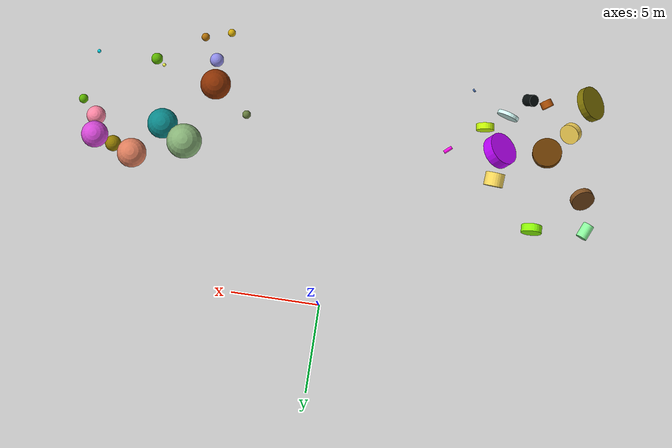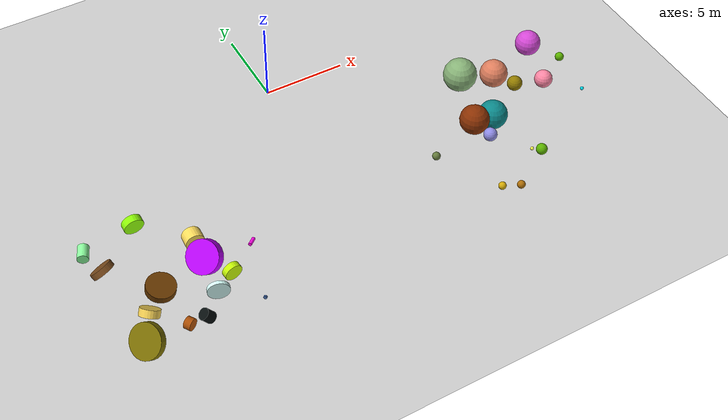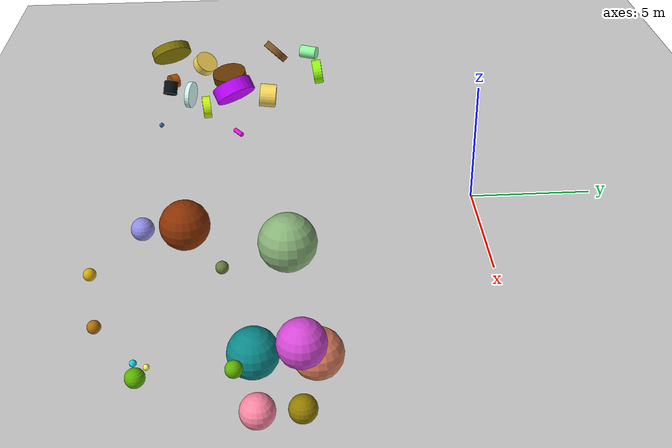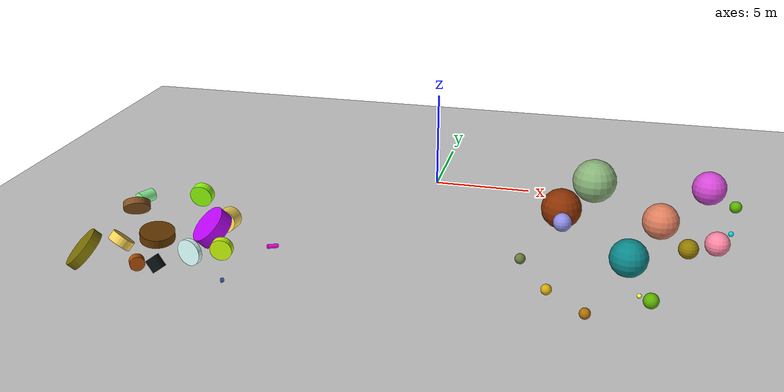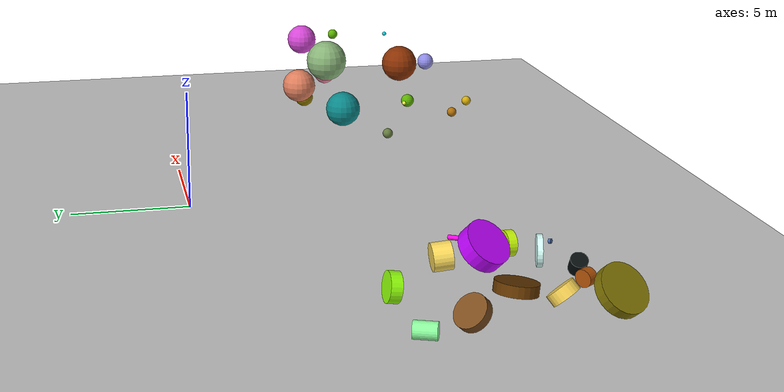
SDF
<sdf version="1.6">
 <world name="default">
  <model name="cylinder_12">
   <allow_auto_disable>0</allow_auto_disable>
   <link name="link">
    <collision name="collision">
     <geometry><cylinder><length>0.348519469831</length><radius>0.671846686259</radius></cylinder></geometry>
     <max_contacts>20</max_contacts>
    </collision>
    <visual name="visual">
     <geometry><cylinder><length>0.348519469831</length><radius>0.671846686259</radius></cylinder></geometry>
     <material>
      <diffuse>0.498039 0.305882 0.117647 1</diffuse>
      <ambient>0.498039 0.305882 0.117647 1</ambient>
     </material>
     <transparency>0.0</transparency>
    </visual>
    <inertial>
     <mass>0.97199405826</mass>
     <inertia>
      <ixz>0.0</ixz>
      <ixx>0.119522847524</ixx>
      <ixy>0.0</ixy>
      <izz>0.219368352356</izz>
      <iyy>0.119522847524</iyy>
      <iyz>0.0</iyz>
     </inertia>
    </inertial>
   </link>
   <pose>-13.905 -8.068 0.618198 -2.39894 0.44911 3.14159</pose>
   <static>0</static>
  </model>
  <model name="ball_17">
   <allow_auto_disable>0</allow_auto_disable>
   <link name="link">
    <collision name="collision">
     <geometry><sphere><radius>0.451653756116</radius></sphere></geometry>
     <max_contacts>20</max_contacts>
    </collision>
    <visual name="visual">
     <geometry><sphere><radius>0.451653756116</radius></sphere></geometry>
     <material><diffuse>0.576471 0.486275 0 1</diffuse><ambient>0.576471 0.486275 0 1</ambient></material>
     <transparency>0.0</transparency>
    </visual>
    <inertial>
     <mass>0.638181472265</mass>
     <inertia>
      <ixz>0.0</ixz>
      <ixx>0.0520733401456</ixx>
      <ixy>0.0</ixy>
      <izz>0.0520733401456</izz>
      <iyy>0.0520733401456</iyy>
      <iyz>0.0</iyz>
     </inertia>
    </inertial>
   </link>
   <pose>12.8337 -7.33886 1 0 -0 0</pose>
   <static>0</static>
  </model>
  <model name="cylinder_15">
   <allow_auto_disable>0</allow_auto_disable>
   <link name="link">
    <collision name="collision">
     <geometry><cylinder><length>0.423007717558</length><radius>0.986067762605</radius></cylinder></geometry>
     <max_contacts>20</max_contacts>
    </collision>
    <visual name="visual">
     <geometry><cylinder><length>0.423007717558</length><radius>0.986067762605</radius></cylinder></geometry>
     <material>
      <diffuse>0.490196 0.443137 0.0117647 1</diffuse>
      <ambient>0.490196 0.443137 0.0117647 1</ambient>
     </material>
     <transparency>0.0</transparency>
    </visual>
    <inertial>
     <mass>0.439629350429</mass>
     <inertia>
      <ixz>0.0</ixz>
      <ixx>0.113421603715</ixx>
      <ixy>0.0</ixy>
      <izz>0.213732322358</izz>
      <iyy>0.113421603715</iyy>
      <iyz>0.0</iyz>
     </inertia>
    </inertial>
   </link>
   <pose>-13.6457 -13.5029 0.854991 -0.292695 0.759019 -3.14159</pose>
   <static>0</static>
  </model>
  <model name="cylinder_14">
   <allow_auto_disable>0</allow_auto_disable>
   <link name="link">
    <collision name="collision">
     <geometry><cylinder><length>0.436676515614</length><radius>0.585657574323</radius></cylinder></geometry>
     <max_contacts>20</max_contacts>
    </collision>
    <visual name="visual">
     <geometry><cylinder><length>0.436676515614</length><radius>0.585657574323</radius></cylinder></geometry>
     <material>
      <diffuse>0.560784 0.996078 0.0352941 1</diffuse>
      <ambient>0.560784 0.996078 0.0352941 1</ambient>
     </material>
     <transparency>0.0</transparency>
    </visual>
    <inertial>
     <mass>0.1</mass>
     <inertia>
      <ixz>0.0</ixz>
      <ixx>0.0101639230198</ixx>
      <ixy>0.0</ixy>
      <izz>0.0171497397181</izz>
      <iyy>0.0101639230198</iyy>
      <iyz>0.0</iyz>
     </inertia>
    </inertial>
   </link>
   <pose>-11.2878 -5.96321 0.609437 -1.43251 -0.160278 1.4058e-17</pose>
   <static>0</static>
  </model>
  <model name="cylinder_17">
   <allow_auto_disable>0</allow_auto_disable>
   <link name="link">
    <collision name="collision">
     <geometry><cylinder><length>0.10429812806</length><radius>0.1</radius></cylinder></geometry>
     <max_contacts>20</max_contacts>
    </collision>
    <visual name="visual">
     <geometry><cylinder><length>0.10429812806</length><radius>0.1</radius></cylinder></geometry>
     <material>
      <diffuse>0.262745 0.419608 0.678431 1</diffuse>
      <ambient>0.262745 0.419608 0.678431 1</ambient>
     </material>
     <transparency>0.0</transparency>
    </visual>
    <inertial>
     <mass>0.14351779254</mass>
     <inertia>
      <ixz>0.0</ixz>
      <ixx>0.000488894550491</ixx>
      <ixy>0.0</ixy>
      <izz>0.0007175889627</izz>
      <iyy>0.000488894550491</iyy>
      <iyz>0.0</iyz>
     </inertia>
    </inertial>
   </link>
   <pose>-7.03344 -13.4673 0.107622 -0.756639 1.32545 3.14159</pose>
   <static>0</static>
  </model>
  <model name="cylinder_16">
   <allow_auto_disable>0</allow_auto_disable>
   <link name="link">
    <collision name="collision">
     <geometry><cylinder><length>0.404121012867</length><radius>0.343477079178</radius></cylinder></geometry>
     <max_contacts>20</max_contacts>
    </collision>
    <visual name="visual">
     <geometry><cylinder><length>0.404121012867</length><radius>0.343477079178</radius></cylinder></geometry>
     <material>
      <diffuse>0.67451 0.309804 0.0235294 1</diffuse>
      <ambient>0.67451 0.309804 0.0235294 1</ambient>
     </material>
     <transparency>0.0</transparency>
    </visual>
    <inertial>
     <mass>0.257883883408</mass>
     <inertia>
      <ixz>0.0</ixz>
      <ixx>0.0111157260091</ixx>
      <ixy>0.0</ixy>
      <izz>0.015212119491</izz>
      <iyy>0.0111157260091</iyy>
      <iyz>0.0</iyz>
     </inertia>
    </inertial>
   </link>
   <pose>-11.228 -13.2284 0.348383 0.998216 1.52477 -1.20654e-15</pose>
   <static>0</static>
  </model>
  <model name="cylinder_11">
   <allow_auto_disable>0</allow_auto_disable>
   <link name="link">
    <collision name="collision">
     <geometry><cylinder><length>0.860133873566</length><radius>0.325578055796</radius></cylinder></geometry>
     <max_contacts>20</max_contacts>
    </collision>
    <visual name="visual">
     <geometry><cylinder><length>0.860133873566</length><radius>0.325578055796</radius></cylinder></geometry>
     <material><diffuse>0.54902 1 0.619608 1</diffuse><ambient>0.54902 1 0.619608 1</ambient></material>
     <transparency>0.0</transparency>
    </visual>
    <inertial>
     <mass>0.91265873735</mass>
     <inertia>
      <ixz>0.0</ixz>
      <ixx>0.0804534149055</ixx>
      <ixy>0.0</ixy>
      <izz>0.0483714015418</izz>
      <iyy>0.0804534149055</iyy>
      <iyz>0.0</iyz>
     </inertia>
    </inertial>
   </link>
   <pose>-14.3365 -6.31927 0.335149 1.97323 1.51345 -3.14159</pose>
   <static>0</static>
  </model>
  <model name="cylinder_10">
   <allow_auto_disable>0</allow_auto_disable>
   <link name="link">
    <collision name="collision">
     <geometry><cylinder><length>0.440561296334</length><radius>0.574134478534</radius></cylinder></geometry>
     <max_contacts>20</max_contacts>
    </collision>
    <visual name="visual">
     <geometry><cylinder><length>0.440561296334</length><radius>0.574134478534</radius></cylinder></geometry>
     <material>
      <diffuse>0.956863 0.815686 0.329412 1</diffuse>
      <ambient>0.956863 0.815686 0.329412 1</ambient>
     </material>
     <transparency>0.0</transparency>
    </visual>
    <inertial>
     <mass>0.424487018374</mass>
     <inertia>
      <ixz>0.0</ixz>
      <ixx>0.0418468306845</ixx>
      <ixy>0.0</ixy>
      <izz>0.0699619127123</izz>
      <iyy>0.0418468306845</iyy>
      <iyz>0.0</iyz>
     </inertia>
    </inertial>
   </link>
   <pose>-12.7845 -11.7283 0.554997 -2.60194 -0.571612 -3.14159</pose>
   <static>0</static>
  </model>
  <model name="cylinder_8">
   <allow_auto_disable>0</allow_auto_disable>
   <link name="link">
    <collision name="collision">
     <geometry><cylinder><length>0.217918807266</length><radius>0.625748222619</radius></cylinder></geometry>
     <max_contacts>20</max_contacts>
    </collision>
    <visual name="visual">
     <geometry><cylinder><length>0.217918807266</length><radius>0.625748222619</radius></cylinder></geometry>
     <material><diffuse>0.839216 1 0.980392 1</diffuse><ambient>0.839216 1 0.980392 1</ambient></material>
     <transparency>0.0</transparency>
    </visual>
    <inertial>
     <mass>0.1</mass>
     <inertia>
      <ixz>0.0</ixz>
      <ixx>0.0101847593408</ixx>
      <ixy>0.0</ixy>
      <izz>0.0195780419056</izz>
      <iyy>0.0101847593408</iyy>
      <iyz>0.0</iyz>
     </inertia>
    </inertial>
   </link>
   <pose>-9.10137 -12.2121 0.627942 1.28189 -1.47956 0</pose>
   <static>0</static>
  </model>
  <model name="ball_18">
   <allow_auto_disable>0</allow_auto_disable>
   <link name="link">
    <collision name="collision">
     <geometry><sphere><radius>0.249406188415</radius></sphere></geometry>
     <max_contacts>20</max_contacts>
    </collision>
    <visual name="visual">
     <geometry><sphere><radius>0.249406188415</radius></sphere></geometry>
     <material><diffuse>0.360784 0.698039 0 1</diffuse><ambient>0.360784 0.698039 0 1</ambient></material>
     <transparency>0.0</transparency>
    </visual>
    <inertial>
     <mass>0.641865758676</mass>
     <inertia>
      <ixz>0.0</ixz>
      <ixx>0.0159705050341</ixx>
      <ixy>0.0</ixy>
      <izz>0.0159705050341</izz>
      <iyy>0.0159705050341</iyy>
      <iyz>0.0</iyz>
     </inertia>
    </inertial>
   </link>
   <pose>14.266 -9.16051 4 0 -0 0</pose>
   <static>0</static>
  </model>
  <model name="ball_13">
   <allow_auto_disable>0</allow_auto_disable>
   <link name="link">
    <collision name="collision">
     <geometry><sphere><radius>0.86516376843</radius></sphere></geometry>
     <max_contacts>20</max_contacts>
    </collision>
    <visual name="visual">
     <geometry><sphere><radius>0.86516376843</radius></sphere></geometry>
     <material>
      <diffuse>0.0392157 0.533333 0.541176 1</diffuse>
      <ambient>0.0392157 0.533333 0.541176 1</ambient>
     </material>
     <transparency>0.0</transparency>
    </visual>
    <inertial>
     <mass>0.976479386893</mass>
     <inertia>
      <ixz>0.0</ixz>
      <ixx>0.292361188394</ixx>
      <ixy>0.0</ixy>
      <izz>0.292361188394</izz>
      <iyy>0.292361188394</iyy>
      <iyz>0.0</iyz>
     </inertia>
    </inertial>
   </link>
   <pose>10.2424 -8.86535 1 0 -0 0</pose>
   <static>0</static>
  </model>
  <model name="ball_16">
   <allow_auto_disable>0</allow_auto_disable>
   <link name="link">
    <collision name="collision">
     <geometry><sphere><radius>0.835407792476</radius></sphere></geometry>
     <max_contacts>20</max_contacts>
    </collision>
    <visual name="visual">
     <geometry><sphere><radius>0.835407792476</radius></sphere></geometry>
     <material>
      <diffuse>0.545098 0.192157 0.0117647 1</diffuse>
      <ambient>0.545098 0.192157 0.0117647 1</ambient>
     </material>
     <transparency>0.0</transparency>
    </visual>
    <inertial>
     <mass>0.989905664653</mass>
     <inertia>
      <ixz>0.0</ixz>
      <ixx>0.276344512284</ixx>
      <ixy>0.0</ixy>
      <izz>0.276344512284</izz>
      <iyy>0.276344512284</iyy>
      <iyz>0.0</iyz>
     </inertia>
    </inertial>
   </link>
   <pose>7.24833 -10.9844 4 0 -0 0</pose>
   <static>0</static>
  </model>
  <model name="cylinder_4">
   <allow_auto_disable>0</allow_auto_disable>
   <link name="link">
    <collision name="collision">
     <geometry><cylinder><length>0.63597103052</length><radius>0.336725903655</radius></cylinder></geometry>
     <max_contacts>20</max_contacts>
    </collision>
    <visual name="visual">
     <geometry><cylinder><length>0.63597103052</length><radius>0.336725903655</radius></cylinder></geometry>
     <material>
      <diffuse>0.027451 0.0509804 0.0509804 1</diffuse>
      <ambient>0.027451 0.0509804 0.0509804 1</ambient>
     </material>
     <transparency>0.0</transparency>
    </visual>
    <inertial>
     <mass>0.647725342089</mass>
     <inertia>
      <ixz>0.0</ixz>
      <ixx>0.0401920135272</ixx>
      <ixy>0.0</ixy>
      <izz>0.0367209533261</izz>
      <iyy>0.0401920135272</iyy>
      <iyz>0.0</iyz>
     </inertia>
    </inertial>
   </link>
   <pose>-10.2625 -13.3013 0.456832 -3.02343 0.639498 3.14159</pose>
   <static>0</static>
  </model>
  <model name="ball_14">
   <allow_auto_disable>0</allow_auto_disable>
   <link name="link">
    <collision name="collision">
     <geometry><sphere><radius>0.232508738198</radius></sphere></geometry>
     <max_contacts>20</max_contacts>
    </collision>
    <visual name="visual">
     <geometry><sphere><radius>0.232508738198</radius></sphere></geometry>
     <material>
      <diffuse>0.686275 0.435294 0.0352941 1</diffuse>
      <ambient>0.686275 0.435294 0.0352941 1</ambient>
     </material>
     <transparency>0.0</transparency>
    </visual>
    <inertial>
     <mass>0.794587407722</mass>
     <inertia>
      <ixz>0.0</ixz>
      <ixx>0.0171822576945</ixx>
      <ixy>0.0</ixy>
      <izz>0.0171822576945</izz>
      <iyy>0.0171822576945</iyy>
      <iyz>0.0</iyz>
     </inertia>
    </inertial>
   </link>
   <pose>8.58749 -14.1342 1 0 -0 0</pose>
   <static>0</static>
  </model>
  <model name="ball_15">
   <allow_auto_disable>0</allow_auto_disable>
   <link name="link">
    <collision name="collision">
     <geometry><sphere><radius>0.1</radius></sphere></geometry>
     <max_contacts>20</max_contacts>
    </collision>
    <visual name="visual">
     <geometry><sphere><radius>0.1</radius></sphere></geometry>
     <material><diffuse>0.992157 1 0.321569 1</diffuse><ambient>0.992157 1 0.321569 1</ambient></material>
     <transparency>0.0</transparency>
    </visual>
    <inertial>
     <mass>0.82939693921</mass>
     <inertia>
      <ixz>0.0</ixz>
      <ixx>0.00331758775684</ixx>
      <ixy>0.0</ixy>
      <izz>0.00331758775684</izz>
      <iyy>0.00331758775684</iyy>
      <iyz>0.0</iyz>
     </inertia>
    </inertial>
   </link>
   <pose>10.6722 -12.2012 1 0 -0 0</pose>
   <static>0</static>
  </model>
  <model name="ball_12">
   <allow_auto_disable>0</allow_auto_disable>
   <link name="link">
    <collision name="collision">
     <geometry><sphere><radius>0.531971920657</radius></sphere></geometry>
     <max_contacts>20</max_contacts>
    </collision>
    <visual name="visual">
     <geometry><sphere><radius>0.531971920657</radius></sphere></geometry>
     <material>
      <diffuse>0.996078 0.52549 0.643137 1</diffuse>
      <ambient>0.996078 0.52549 0.643137 1</ambient>
     </material>
     <transparency>0.0</transparency>
    </visual>
    <inertial>
     <mass>0.117626761506</mass>
     <inertia>
      <ixz>0.0</ixz>
      <ixx>0.0133150729499</ixx>
      <ixy>0.0</ixy>
      <izz>0.0133150729499</izz>
      <iyy>0.0133150729499</iyy>
      <iyz>0.0</iyz>
     </inertia>
    </inertial>
   </link>
   <pose>13.8407 -8.63617 2 0 -0 0</pose>
   <static>0</static>
  </model>
  <model name="ball_10">
   <allow_auto_disable>0</allow_auto_disable>
   <link name="link">
    <collision name="collision">
     <geometry><sphere><radius>0.379432220365</radius></sphere></geometry>
     <max_contacts>20</max_contacts>
    </collision>
    <visual name="visual">
     <geometry><sphere><radius>0.379432220365</radius></sphere></geometry>
     <material>
      <diffuse>0.560784 0.54902 0.905882 1</diffuse>
      <ambient>0.560784 0.54902 0.905882 1</ambient>
     </material>
     <transparency>0.0</transparency>
    </visual>
    <inertial>
     <mass>0.682365531955</mass>
     <inertia>
      <ixz>0.0</ixz>
      <ixx>0.0392957414077</ixx>
      <ixy>0.0</ixy>
      <izz>0.0392957414077</izz>
      <iyy>0.0392957414077</iyy>
      <iyz>0.0</iyz>
     </inertia>
    </inertial>
   </link>
   <pose>7.38445 -12.3332 4 0 -0 0</pose>
   <static>0</static>
  </model>
  <model name="cylinder_18">
   <allow_auto_disable>0</allow_auto_disable>
   <link name="link">
    <collision name="collision">
     <geometry><cylinder><length>0.437397844818</length><radius>0.835356150945</radius></cylinder></geometry>
     <max_contacts>20</max_contacts>
    </collision>
    <visual name="visual">
     <geometry><cylinder><length>0.437397844818</length><radius>0.835356150945</radius></cylinder></geometry>
     <material><diffuse>0.396078 0.215686 0 1</diffuse><ambient>0.396078 0.215686 0 1</ambient></material>
     <transparency>0.0</transparency>
    </visual>
    <inertial>
     <mass>0.182459761803</mass>
     <inertia>
      <ixz>0.0</ixz>
      <ixx>0.0347399824162</ixx>
      <ixy>0.0</ixy>
      <izz>0.0636620262695</izz>
      <iyy>0.0347399824162</iyy>
      <iyz>0.0</iyz>
     </inertia>
    </inertial>
   </link>
   <pose>-11.6185 -10.4335 0.368288 0.134413 0.127265 0</pose>
   <static>0</static>
  </model>
  <model name="ball_8">
   <allow_auto_disable>0</allow_auto_disable>
   <link name="link">
    <collision name="collision">
     <geometry><sphere><radius>0.238486846299</radius></sphere></geometry>
     <max_contacts>20</max_contacts>
    </collision>
    <visual name="visual">
     <geometry><sphere><radius>0.238486846299</radius></sphere></geometry>
     <material><diffuse>0.4 0.486275 0.243137 1</diffuse><ambient>0.4 0.486275 0.243137 1</ambient></material>
     <transparency>0.0</transparency>
    </visual>
    <inertial>
     <mass>0.1</mass>
     <inertia>
      <ixz>0.0</ixz>
      <ixx>0.0022750390343</ixx>
      <ixy>0.0</ixy>
      <izz>0.0022750390343</izz>
      <iyy>0.0022750390343</iyy>
      <iyz>0.0</iyz>
     </inertia>
    </inertial>
   </link>
   <pose>5.60488 -10.0495 1 0 -0 0</pose>
   <static>0</static>
  </model>
  <model name="ball_9">
   <allow_auto_disable>0</allow_auto_disable>
   <link name="link">
    <collision name="collision">
     <geometry><sphere><radius>0.1</radius></sphere></geometry>
     <max_contacts>20</max_contacts>
    </collision>
    <visual name="visual">
     <geometry><sphere><radius>0.1</radius></sphere></geometry>
     <material>
      <diffuse>0.00784314 0.847059 0.913725 1</diffuse>
      <ambient>0.00784314 0.847059 0.913725 1</ambient>
     </material>
     <transparency>0.0</transparency>
    </visual>
    <inertial>
     <mass>0.480486730799</mass>
     <inertia>
      <ixz>0.0</ixz>
      <ixx>0.0019219469232</ixx>
      <ixy>0.0</ixy>
      <izz>0.0019219469232</izz>
      <iyy>0.0019219469232</iyy>
      <iyz>0.0</iyz>
     </inertia>
    </inertial>
   </link>
   <pose>13.8393 -11.8856 4 0 -0 0</pose>
   <static>0</static>
  </model>
  <model name="cylinder_9">
   <allow_auto_disable>0</allow_auto_disable>
   <link name="link">
    <collision name="collision">
     <geometry><cylinder><length>0.649638154971</length><radius>0.967159558529</radius></cylinder></geometry>
     <max_contacts>20</max_contacts>
    </collision>
    <visual name="visual">
     <geometry><cylinder><length>0.649638154971</length><radius>0.967159558529</radius></cylinder></geometry>
     <material>
      <diffuse>0.745098 0.0117647 0.992157 1</diffuse>
      <ambient>0.745098 0.0117647 0.992157 1</ambient>
     </material>
     <transparency>0.0</transparency>
    </visual>
    <inertial>
     <mass>0.914088808387</mass>
     <inertia>
      <ixz>0.0</ixz>
      <ixx>0.245906843317</ixx>
      <ixy>0.0</ixy>
      <izz>0.427518244103</izz>
      <iyy>0.245906843317</iyy>
      <iyz>0.0</iyz>
     </inertia>
    </inertial>
   </link>
   <pose>-8.89416 -10.1027 0.89658 -0.404197 0.655571 -3.14159</pose>
   <static>0</static>
  </model>
  <model name="cylinder_5">
   <allow_auto_disable>0</allow_auto_disable>
   <link name="link">
    <collision name="collision">
     <geometry><cylinder><length>0.765085205494</length><radius>0.555521799547</radius></cylinder></geometry>
     <max_contacts>20</max_contacts>
    </collision>
    <visual name="visual">
     <geometry><cylinder><length>0.765085205494</length><radius>0.555521799547</radius></cylinder></geometry>
     <material>
      <diffuse>0.992157 0.862745 0.360784 1</diffuse>
      <ambient>0.992157 0.862745 0.360784 1</ambient>
     </material>
     <transparency>0.0</transparency>
    </visual>
    <inertial>
     <mass>0.396177619179</mass>
     <inertia>
      <ixz>0.0</ixz>
      <ixx>0.0498909374855</ixx>
      <ixy>0.0</ixy>
      <izz>0.061131092051</izz>
      <iyy>0.0498909374855</iyy>
      <iyz>0.0</iyz>
     </inertia>
    </inertial>
   </link>
   <pose>-8.82327 -8.46924 0.590388 -1.45266 0.574773 3.14159</pose>
   <static>0</static>
  </model>
  <model name="ball_4">
   <allow_auto_disable>0</allow_auto_disable>
   <link name="link">
    <collision name="collision">
     <geometry><sphere><radius>0.825508677049</radius></sphere></geometry>
     <max_contacts>20</max_contacts>
    </collision>
    <visual name="visual">
     <geometry><sphere><radius>0.825508677049</radius></sphere></geometry>
     <material>
      <diffuse>0.870588 0.494118 0.364706 1</diffuse>
      <ambient>0.870588 0.494118 0.364706 1</ambient>
     </material>
     <transparency>0.0</transparency>
    </visual>
    <inertial>
     <mass>0.1</mass>
     <inertia>
      <ixz>0.0</ixz>
      <ixx>0.0272585830353</ixx>
      <ixy>0.0</ixy>
      <izz>0.0272585830353</izz>
      <iyy>0.0272585830353</iyy>
      <iyz>0.0</iyz>
     </inertia>
    </inertial>
   </link>
   <pose>11.5389 -6.83292 2 0 -0 0</pose>
   <static>0</static>
  </model>
  <model name="ball_5">
   <allow_auto_disable>0</allow_auto_disable>
   <link name="link">
    <collision name="collision">
     <geometry><sphere><radius>0.964055448735</radius></sphere></geometry>
     <max_contacts>20</max_contacts>
    </collision>
    <visual name="visual">
     <geometry><sphere><radius>0.964055448735</radius></sphere></geometry>
     <material>
      <diffuse>0.533333 0.701961 0.470588 1</diffuse>
      <ambient>0.533333 0.701961 0.470588 1</ambient>
     </material>
     <transparency>0.0</transparency>
    </visual>
    <inertial>
     <mass>0.129707123</mass>
     <inertia>
      <ixz>0.0</ixz>
      <ixx>0.048220070934</ixx>
      <ixy>0.0</ixy>
      <izz>0.048220070934</izz>
      <iyy>0.048220070934</iyy>
      <iyz>0.0</iyz>
     </inertia>
    </inertial>
   </link>
   <pose>8.47294 -7.63666 4 0 -0 0</pose>
   <static>0</static>
  </model>
  <model name="ball_6">
   <allow_auto_disable>0</allow_auto_disable>
   <link name="link">
    <collision name="collision">
     <geometry><sphere><radius>0.326893782195</radius></sphere></geometry>
     <max_contacts>20</max_contacts>
    </collision>
    <visual name="visual">
     <geometry><sphere><radius>0.326893782195</radius></sphere></geometry>
     <material><diffuse>0.360784 0.698039 0 1</diffuse><ambient>0.360784 0.698039 0 1</ambient></material>
     <transparency>0.0</transparency>
    </visual>
    <inertial>
     <mass>0.798680075851</mass>
     <inertia>
      <ixz>0.0</ixz>
      <ixx>0.0341386357505</ixx>
      <ixy>0.0</ixy>
      <izz>0.0341386357505</izz>
      <iyy>0.0341386357505</iyy>
      <iyz>0.0</iyz>
     </inertia>
    </inertial>
   </link>
   <pose>11.1337 -12.5006 1 0 -0 0</pose>
   <static>0</static>
  </model>
  <model name="ball_7">
   <allow_auto_disable>0</allow_auto_disable>
   <link name="link">
    <collision name="collision">
     <geometry><sphere><radius>0.732029303043</radius></sphere></geometry>
     <max_contacts>20</max_contacts>
    </collision>
    <visual name="visual">
     <geometry><sphere><radius>0.732029303043</radius></sphere></geometry>
     <material>
      <diffuse>0.839216 0.282353 0.843137 1</diffuse>
      <ambient>0.839216 0.282353 0.843137 1</ambient>
     </material>
     <transparency>0.0</transparency>
    </visual>
    <inertial>
     <mass>0.1428204544</mass>
     <inertia>
      <ixz>0.0</ixz>
      <ixx>0.0306131016918</ixx>
      <ixy>0.0</ixy>
      <izz>0.0306131016918</izz>
      <iyy>0.0306131016918</iyy>
      <iyz>0.0</iyz>
     </inertia>
    </inertial>
   </link>
   <pose>13.3526 -7.31319 4 0 -0 0</pose>
   <static>0</static>
  </model>
  <model name="cylinder_7">
   <allow_auto_disable>0</allow_auto_disable>
   <link name="link">
    <collision name="collision">
     <geometry><cylinder><length>0.359586312077</length><radius>0.518229339768</radius></cylinder></geometry>
     <max_contacts>20</max_contacts>
    </collision>
    <visual name="visual">
     <geometry><cylinder><length>0.359586312077</length><radius>0.518229339768</radius></cylinder></geometry>
     <material>
      <diffuse>0.776471 0.972549 0.0313725 1</diffuse>
      <ambient>0.776471 0.972549 0.0313725 1</ambient>
     </material>
     <transparency>0.0</transparency>
    </visual>
    <inertial>
     <mass>0.439712300087</mass>
     <inertia>
      <ixz>0.0</ixz>
      <ixx>0.0342604499467</ixx>
      <ixy>0.0</ixy>
      <izz>0.0590449301098</izz>
      <iyy>0.0342604499467</iyy>
      <iyz>0.0</iyz>
     </inertia>
    </inertial>
   </link>
   <pose>-7.91567 -11.3787 0.524383 1.43765 1.27233 3.14159</pose>
   <static>0</static>
  </model>
  <model name="ball_11">
   <allow_auto_disable>0</allow_auto_disable>
   <link name="link">
    <collision name="collision">
     <geometry><sphere><radius>0.21986616502</radius></sphere></geometry>
     <max_contacts>20</max_contacts>
    </collision>
    <visual name="visual">
     <geometry><sphere><radius>0.21986616502</radius></sphere></geometry>
     <material>
      <diffuse>0.835294 0.670588 0.0352941 1</diffuse>
      <ambient>0.835294 0.670588 0.0352941 1</ambient>
     </material>
     <transparency>0.0</transparency>
    </visual>
    <inertial>
     <mass>0.581776241895</mass>
     <inertia>
      <ixz>0.0</ixz>
      <ixx>0.0112494884973</ixx>
      <ixy>0.0</ixy>
      <izz>0.0112494884973</izz>
      <iyy>0.0112494884973</iyy>
      <iyz>0.0</iyz>
     </inertia>
    </inertial>
   </link>
   <pose>7.03615 -14.3704 2 0 -0 0</pose>
   <static>0</static>
  </model>
  <model name="cylinder_6">
   <allow_auto_disable>0</allow_auto_disable>
   <link name="link">
    <collision name="collision">
     <geometry><cylinder><length>0.516697362869</length><radius>0.1</radius></cylinder></geometry>
     <max_contacts>20</max_contacts>
    </collision>
    <visual name="visual">
     <geometry><cylinder><length>0.516697362869</length><radius>0.1</radius></cylinder></geometry>
     <material><diffuse>1 0.0313725 0.909804 1</diffuse><ambient>1 0.0313725 0.909804 1</ambient></material>
     <transparency>0.0</transparency>
    </visual>
    <inertial>
     <mass>0.1</mass>
     <inertia>
      <ixz>0.0</ixz>
      <ixx>0.00247480137329</ixx>
      <ixy>0.0</ixy>
      <izz>0.0005</izz>
      <iyy>0.00247480137329</iyy>
      <iyz>0.0</iyz>
     </inertia>
    </inertial>
   </link>
   <pose>-6.01491 -9.8428 0.134533 0.704543 -1.38829 -3.05862e-16</pose>
   <static>0</static>
  </model>
  <include><static>1</static><uri>model://ground_plane</uri><name>ground_plane</name></include>
 </world>
</sdf>
